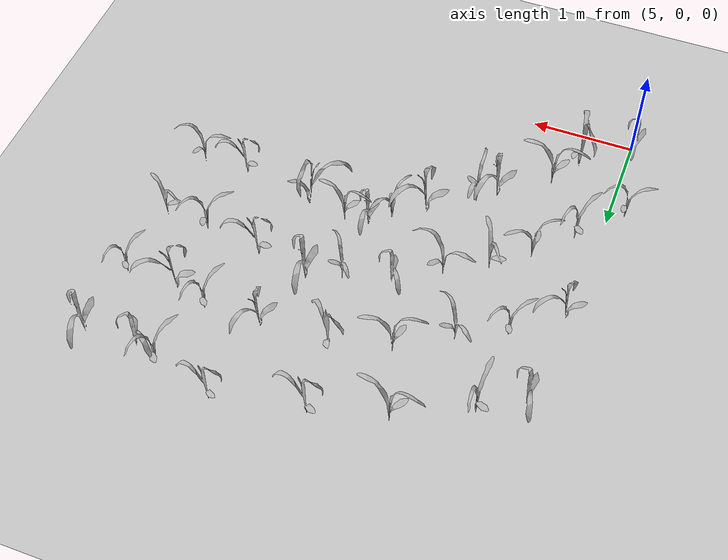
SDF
<sdf version="1.6">
 <world name="default">
  <model name="ground_plane">
   <static>1</static>
   <link name="link">
    <collision name="collision">
     <geometry><plane><normal>0 0 1</normal><size>100 100</size></plane></geometry>
     <surface>
      <contact><collide_bitmask>65535</collide_bitmask></contact>
      <friction><ode><mu>100</mu><mu2>50</mu2></ode></friction>
     </surface>
    </collision>
    <visual name="visual">
     <cast_shadows>0</cast_shadows>
     <geometry><plane><normal>0 0 1</normal><size>100 100</size></plane></geometry>
     <material>
      <script><uri>file://media/materials/scripts/gazebo.material</uri><name>Gazebo/Grey</name></script>
     </material>
    </visual>
   </link>
  </model>
  <model name="maize_01_0035">
   <pose>4.97444595073593 0.08621169543100017 0.05 0 -0 2.427624297971031</pose>
   <link name="maize_01_0035_link">
    <inertial>
     <mass>5.0</mass>
     <inertia>
      <ixx>0.0033416667</ixx>
      <ixy>0</ixy>
      <ixz>0</ixz>
      <iyy>0.0033416667</iyy>
      <iyz>0</iyz>
      <izz>0.000016666667</izz>
     </inertia>
     <pose>0 0 0.1 0 0 0</pose>
    </inertial>
    <collision name="collision">
     <pose>0 0 0.2 0 -0 0</pose>
     <geometry><box><size>0.02 0.02 0.4</size></box></geometry>
     <surface><friction><ode><mu>10</mu><mu2>10</mu2></ode></friction></surface>
    </collision>
    <visual name="visual">
     <geometry>
      <mesh>
       <uri>model://maize_01/meshes/maize_01.dae</uri>
       <scale>0.5274171438781382 0.5274171438781382 0.5274171438781382</scale>
      </mesh>
     </geometry>
    </visual>
   </link>
  </model>
  <model name="maize_02_0038">
   <pose>4.852091353903067 0.9129262782107443 0.05 0 -0 5.841322465150169</pose>
   <link name="maize_02_0038_link">
    <inertial>
     <mass>5.0</mass>
     <inertia>
      <ixx>0.0033416667</ixx>
      <ixy>0</ixy>
      <ixz>0</ixz>
      <iyy>0.0033416667</iyy>
      <iyz>0</iyz>
      <izz>0.000016666667</izz>
     </inertia>
     <pose>0 0 0.1 0 0 0</pose>
    </inertial>
    <collision name="collision">
     <pose>0 0 0.2 0 -0 0</pose>
     <geometry><box><size>0.02 0.02 0.4</size></box></geometry>
     <surface><friction><ode><mu>10</mu><mu2>10</mu2></ode></friction></surface>
    </collision>
    <visual name="visual">
     <geometry>
      <mesh>
       <uri>model://maize_02/meshes/maize_02.dae</uri>
       <scale>0.5319734408075188 0.5319734408075188 0.5319734408075188</scale>
      </mesh>
     </geometry>
    </visual>
   </link>
  </model>
  <model name="maize_01_0039">
   <pose>5.4266685938613435 0.43335299133955385 0.05 0 -0 5.6987765901204765</pose>
   <link name="maize_01_0039_link">
    <inertial>
     <mass>5.0</mass>
     <inertia>
      <ixx>0.0033416667</ixx>
      <ixy>0</ixy>
      <ixz>0</ixz>
      <iyy>0.0033416667</iyy>
      <iyz>0</iyz>
      <izz>0.000016666667</izz>
     </inertia>
     <pose>0 0 0.1 0 0 0</pose>
    </inertial>
    <collision name="collision">
     <pose>0 0 0.2 0 -0 0</pose>
     <geometry><box><size>0.02 0.02 0.4</size></box></geometry>
     <surface><friction><ode><mu>10</mu><mu2>10</mu2></ode></friction></surface>
    </collision>
    <visual name="visual">
     <geometry>
      <mesh>
       <uri>model://maize_01/meshes/maize_01.dae</uri>
       <scale>0.6562229309477603 0.6562229309477603 0.6562229309477603</scale>
      </mesh>
     </geometry>
    </visual>
   </link>
  </model>
  <model name="maize_02_0042">
   <pose>5.228473565053264 1.3279531962481805 0.05 0 -0 0.15605644897329987</pose>
   <link name="maize_02_0042_link">
    <inertial>
     <mass>5.0</mass>
     <inertia>
      <ixx>0.0033416667</ixx>
      <ixy>0</ixy>
      <ixz>0</ixz>
      <iyy>0.0033416667</iyy>
      <iyz>0</iyz>
      <izz>0.000016666667</izz>
     </inertia>
     <pose>0 0 0.1 0 0 0</pose>
    </inertial>
    <collision name="collision">
     <pose>0 0 0.2 0 -0 0</pose>
     <geometry><box><size>0.02 0.02 0.4</size></box></geometry>
     <surface><friction><ode><mu>10</mu><mu2>10</mu2></ode></friction></surface>
    </collision>
    <visual name="visual">
     <geometry>
      <mesh>
       <uri>model://maize_02/meshes/maize_02.dae</uri>
       <scale>0.606172681702437 0.606172681702437 0.606172681702437</scale>
      </mesh>
     </geometry>
    </visual>
   </link>
  </model>
  <model name="maize_02_0043">
   <pose>5.61811446142336 0.7618114145474567 0.05 0 -0 2.0131910083684352</pose>
   <link name="maize_02_0043_link">
    <inertial>
     <mass>5.0</mass>
     <inertia>
      <ixx>0.0033416667</ixx>
      <ixy>0</ixy>
      <ixz>0</ixz>
      <iyy>0.0033416667</iyy>
      <iyz>0</iyz>
      <izz>0.000016666667</izz>
     </inertia>
     <pose>0 0 0.1 0 0 0</pose>
    </inertial>
    <collision name="collision">
     <pose>0 0 0.2 0 -0 0</pose>
     <geometry><box><size>0.02 0.02 0.4</size></box></geometry>
     <surface><friction><ode><mu>10</mu><mu2>10</mu2></ode></friction></surface>
    </collision>
    <visual name="visual">
     <geometry>
      <mesh>
       <uri>model://maize_02/meshes/maize_02.dae</uri>
       <scale>0.6522062850050472 0.6522062850050472 0.6522062850050472</scale>
      </mesh>
     </geometry>
    </visual>
   </link>
  </model>
  <model name="maize_01_0044">
   <pose>5.059350256459496 2.2413220388103126 0.05 0 -0 1.501315639922494</pose>
   <link name="maize_01_0044_link">
    <inertial>
     <mass>5.0</mass>
     <inertia>
      <ixx>0.0033416667</ixx>
      <ixy>0</ixy>
      <ixz>0</ixz>
      <iyy>0.0033416667</iyy>
      <iyz>0</iyz>
      <izz>0.000016666667</izz>
     </inertia>
     <pose>0 0 0.1 0 0 0</pose>
    </inertial>
    <collision name="collision">
     <pose>0 0 0.2 0 -0 0</pose>
     <geometry><box><size>0.02 0.02 0.4</size></box></geometry>
     <surface><friction><ode><mu>10</mu><mu2>10</mu2></ode></friction></surface>
    </collision>
    <visual name="visual">
     <geometry>
      <mesh>
       <uri>model://maize_01/meshes/maize_01.dae</uri>
       <scale>0.5656031749005166 0.5656031749005166 0.5656031749005166</scale>
      </mesh>
     </geometry>
    </visual>
   </link>
  </model>
  <model name="maize_02_0046">
   <pose>5.545135330078479 1.683932687683838 0.05 0 -0 2.7002874187517696</pose>
   <link name="maize_02_0046_link">
    <inertial>
     <mass>5.0</mass>
     <inertia>
      <ixx>0.0033416667</ixx>
      <ixy>0</ixy>
      <ixz>0</ixz>
      <iyy>0.0033416667</iyy>
      <iyz>0</iyz>
      <izz>0.000016666667</izz>
     </inertia>
     <pose>0 0 0.1 0 0 0</pose>
    </inertial>
    <collision name="collision">
     <pose>0 0 0.2 0 -0 0</pose>
     <geometry><box><size>0.02 0.02 0.4</size></box></geometry>
     <surface><friction><ode><mu>10</mu><mu2>10</mu2></ode></friction></surface>
    </collision>
    <visual name="visual">
     <geometry>
      <mesh>
       <uri>model://maize_02/meshes/maize_02.dae</uri>
       <scale>0.5547920870230515 0.5547920870230515 0.5547920870230515</scale>
      </mesh>
     </geometry>
    </visual>
   </link>
  </model>
  <model name="maize_01_0047">
   <pose>6.067017970523803 1.0879434061076974 0.05 0 -0 2.0111031066399034</pose>
   <link name="maize_01_0047_link">
    <inertial>
     <mass>5.0</mass>
     <inertia>
      <ixx>0.0033416667</ixx>
      <ixy>0</ixy>
      <ixz>0</ixz>
      <iyy>0.0033416667</iyy>
      <iyz>0</iyz>
      <izz>0.000016666667</izz>
     </inertia>
     <pose>0 0 0.1 0 0 0</pose>
    </inertial>
    <collision name="collision">
     <pose>0 0 0.2 0 -0 0</pose>
     <geometry><box><size>0.02 0.02 0.4</size></box></geometry>
     <surface><friction><ode><mu>10</mu><mu2>10</mu2></ode></friction></surface>
    </collision>
    <visual name="visual">
     <geometry>
      <mesh>
       <uri>model://maize_01/meshes/maize_01.dae</uri>
       <scale>0.631238426143059 0.631238426143059 0.631238426143059</scale>
      </mesh>
     </geometry>
    </visual>
   </link>
  </model>
  <model name="maize_02_0048">
   <pose>5.485702398067829 2.6015920264345453 0.05 0 -0 6.196117535128421</pose>
   <link name="maize_02_0048_link">
    <inertial>
     <mass>5.0</mass>
     <inertia>
      <ixx>0.0033416667</ixx>
      <ixy>0</ixy>
      <ixz>0</ixz>
      <iyy>0.0033416667</iyy>
      <iyz>0</iyz>
      <izz>0.000016666667</izz>
     </inertia>
     <pose>0 0 0.1 0 0 0</pose>
    </inertial>
    <collision name="collision">
     <pose>0 0 0.2 0 -0 0</pose>
     <geometry><box><size>0.02 0.02 0.4</size></box></geometry>
     <surface><friction><ode><mu>10</mu><mu2>10</mu2></ode></friction></surface>
    </collision>
    <visual name="visual">
     <geometry>
      <mesh>
       <uri>model://maize_02/meshes/maize_02.dae</uri>
       <scale>0.5387643223977056 0.5387643223977056 0.5387643223977056</scale>
      </mesh>
     </geometry>
    </visual>
   </link>
  </model>
  <model name="maize_01_0049">
   <pose>5.131719209210227 3.222042796610569 0.05 0 -0 2.6271676853061567</pose>
   <link name="maize_01_0049_link">
    <inertial>
     <mass>5.0</mass>
     <inertia>
      <ixx>0.0033416667</ixx>
      <ixy>0</ixy>
      <ixz>0</ixz>
      <iyy>0.0033416667</iyy>
      <iyz>0</iyz>
      <izz>0.000016666667</izz>
     </inertia>
     <pose>0 0 0.1 0 0 0</pose>
    </inertial>
    <collision name="collision">
     <pose>0 0 0.2 0 -0 0</pose>
     <geometry><box><size>0.02 0.02 0.4</size></box></geometry>
     <surface><friction><ode><mu>10</mu><mu2>10</mu2></ode></friction></surface>
    </collision>
    <visual name="visual">
     <geometry>
      <mesh>
       <uri>model://maize_01/meshes/maize_01.dae</uri>
       <scale>0.5669864393895175 0.5669864393895175 0.5669864393895175</scale>
      </mesh>
     </geometry>
    </visual>
   </link>
  </model>
  <model name="maize_02_0050">
   <pose>5.866793018277562 1.9719409458748605 0.05 0 -0 1.086043667735169</pose>
   <link name="maize_02_0050_link">
    <inertial>
     <mass>5.0</mass>
     <inertia>
      <ixx>0.0033416667</ixx>
      <ixy>0</ixy>
      <ixz>0</ixz>
      <iyy>0.0033416667</iyy>
      <iyz>0</iyz>
      <izz>0.000016666667</izz>
     </inertia>
     <pose>0 0 0.1 0 0 0</pose>
    </inertial>
    <collision name="collision">
     <pose>0 0 0.2 0 -0 0</pose>
     <geometry><box><size>0.02 0.02 0.4</size></box></geometry>
     <surface><friction><ode><mu>10</mu><mu2>10</mu2></ode></friction></surface>
    </collision>
    <visual name="visual">
     <geometry>
      <mesh>
       <uri>model://maize_02/meshes/maize_02.dae</uri>
       <scale>0.5988511224476204 0.5988511224476204 0.5988511224476204</scale>
      </mesh>
     </geometry>
    </visual>
   </link>
  </model>
  <model name="maize_02_0051">
   <pose>6.228900534053314 1.2453344410985538 0.05 0 -0 3.744000959173067</pose>
   <link name="maize_02_0051_link">
    <inertial>
     <mass>5.0</mass>
     <inertia>
      <ixx>0.0033416667</ixx>
      <ixy>0</ixy>
      <ixz>0</ixz>
      <iyy>0.0033416667</iyy>
      <iyz>0</iyz>
      <izz>0.000016666667</izz>
     </inertia>
     <pose>0 0 0.1 0 0 0</pose>
    </inertial>
    <collision name="collision">
     <pose>0 0 0.2 0 -0 0</pose>
     <geometry><box><size>0.02 0.02 0.4</size></box></geometry>
     <surface><friction><ode><mu>10</mu><mu2>10</mu2></ode></friction></surface>
    </collision>
    <visual name="visual">
     <geometry>
      <mesh>
       <uri>model://maize_02/meshes/maize_02.dae</uri>
       <scale>0.58333928505133 0.58333928505133 0.58333928505133</scale>
      </mesh>
     </geometry>
    </visual>
   </link>
  </model>
  <model name="maize_02_0052">
   <pose>5.912029777595031 2.84165702037402 0.05 0 -0 4.547535072387455</pose>
   <link name="maize_02_0052_link">
    <inertial>
     <mass>5.0</mass>
     <inertia>
      <ixx>0.0033416667</ixx>
      <ixy>0</ixy>
      <ixz>0</ixz>
      <iyy>0.0033416667</iyy>
      <iyz>0</iyz>
      <izz>0.000016666667</izz>
     </inertia>
     <pose>0 0 0.1 0 0 0</pose>
    </inertial>
    <collision name="collision">
     <pose>0 0 0.2 0 -0 0</pose>
     <geometry><box><size>0.02 0.02 0.4</size></box></geometry>
     <surface><friction><ode><mu>10</mu><mu2>10</mu2></ode></friction></surface>
    </collision>
    <visual name="visual">
     <geometry>
      <mesh>
       <uri>model://maize_02/meshes/maize_02.dae</uri>
       <scale>0.5445625708520955 0.5445625708520955 0.5445625708520955</scale>
      </mesh>
     </geometry>
    </visual>
   </link>
  </model>
  <model name="maize_02_0053">
   <pose>5.50708366719429 3.4720703647930358 0.05 0 -0 0.5386488532530632</pose>
   <link name="maize_02_0053_link">
    <inertial>
     <mass>5.0</mass>
     <inertia>
      <ixx>0.0033416667</ixx>
      <ixy>0</ixy>
      <ixz>0</ixz>
      <iyy>0.0033416667</iyy>
      <iyz>0</iyz>
      <izz>0.000016666667</izz>
     </inertia>
     <pose>0 0 0.1 0 0 0</pose>
    </inertial>
    <collision name="collision">
     <pose>0 0 0.2 0 -0 0</pose>
     <geometry><box><size>0.02 0.02 0.4</size></box></geometry>
     <surface><friction><ode><mu>10</mu><mu2>10</mu2></ode></friction></surface>
    </collision>
    <visual name="visual">
     <geometry>
      <mesh>
       <uri>model://maize_02/meshes/maize_02.dae</uri>
       <scale>0.6283344582559183 0.6283344582559183 0.6283344582559183</scale>
      </mesh>
     </geometry>
    </visual>
   </link>
  </model>
  <model name="maize_02_0054">
   <pose>6.245173861658526 2.1921937988072697 0.05 0 -0 5.142134379937213</pose>
   <link name="maize_02_0054_link">
    <inertial>
     <mass>5.0</mass>
     <inertia>
      <ixx>0.0033416667</ixx>
      <ixy>0</ixy>
      <ixz>0</ixz>
      <iyy>0.0033416667</iyy>
      <iyz>0</iyz>
      <izz>0.000016666667</izz>
     </inertia>
     <pose>0 0 0.1 0 0 0</pose>
    </inertial>
    <collision name="collision">
     <pose>0 0 0.2 0 -0 0</pose>
     <geometry><box><size>0.02 0.02 0.4</size></box></geometry>
     <surface><friction><ode><mu>10</mu><mu2>10</mu2></ode></friction></surface>
    </collision>
    <visual name="visual">
     <geometry>
      <mesh>
       <uri>model://maize_02/meshes/maize_02.dae</uri>
       <scale>0.6213446753047682 0.6213446753047682 0.6213446753047682</scale>
      </mesh>
     </geometry>
    </visual>
   </link>
  </model>
  <model name="maize_01_0055">
   <pose>6.636470806480989 1.5198573351886528 0.05 0 -0 1.6437269788045112</pose>
   <link name="maize_01_0055_link">
    <inertial>
     <mass>5.0</mass>
     <inertia>
      <ixx>0.0033416667</ixx>
      <ixy>0</ixy>
      <ixz>0</ixz>
      <iyy>0.0033416667</iyy>
      <iyz>0</iyz>
      <izz>0.000016666667</izz>
     </inertia>
     <pose>0 0 0.1 0 0 0</pose>
    </inertial>
    <collision name="collision">
     <pose>0 0 0.2 0 -0 0</pose>
     <geometry><box><size>0.02 0.02 0.4</size></box></geometry>
     <surface><friction><ode><mu>10</mu><mu2>10</mu2></ode></friction></surface>
    </collision>
    <visual name="visual">
     <geometry>
      <mesh>
       <uri>model://maize_01/meshes/maize_01.dae</uri>
       <scale>0.6826364055513616 0.6826364055513616 0.6826364055513616</scale>
      </mesh>
     </geometry>
    </visual>
   </link>
  </model>
  <model name="maize_02_0056">
   <pose>6.391391297587896 3.13200796140828 0.05 0 -0 2.3103566168721494</pose>
   <link name="maize_02_0056_link">
    <inertial>
     <mass>5.0</mass>
     <inertia>
      <ixx>0.0033416667</ixx>
      <ixy>0</ixy>
      <ixz>0</ixz>
      <iyy>0.0033416667</iyy>
      <iyz>0</iyz>
      <izz>0.000016666667</izz>
     </inertia>
     <pose>0 0 0.1 0 0 0</pose>
    </inertial>
    <collision name="collision">
     <pose>0 0 0.2 0 -0 0</pose>
     <geometry><box><size>0.02 0.02 0.4</size></box></geometry>
     <surface><friction><ode><mu>10</mu><mu2>10</mu2></ode></friction></surface>
    </collision>
    <visual name="visual">
     <geometry>
      <mesh>
       <uri>model://maize_02/meshes/maize_02.dae</uri>
       <scale>0.6052102994979127 0.6052102994979127 0.6052102994979127</scale>
      </mesh>
     </geometry>
    </visual>
   </link>
  </model>
  <model name="maize_02_0057">
   <pose>6.168631820246687 3.8149061786681275 0.05 0 -0 1.9253578948192391</pose>
   <link name="maize_02_0057_link">
    <inertial>
     <mass>5.0</mass>
     <inertia>
      <ixx>0.0033416667</ixx>
      <ixy>0</ixy>
      <ixz>0</ixz>
      <iyy>0.0033416667</iyy>
      <iyz>0</iyz>
      <izz>0.000016666667</izz>
     </inertia>
     <pose>0 0 0.1 0 0 0</pose>
    </inertial>
    <collision name="collision">
     <pose>0 0 0.2 0 -0 0</pose>
     <geometry><box><size>0.02 0.02 0.4</size></box></geometry>
     <surface><friction><ode><mu>10</mu><mu2>10</mu2></ode></friction></surface>
    </collision>
    <visual name="visual">
     <geometry>
      <mesh>
       <uri>model://maize_02/meshes/maize_02.dae</uri>
       <scale>0.6498650940780096 0.6498650940780096 0.6498650940780096</scale>
      </mesh>
     </geometry>
    </visual>
   </link>
  </model>
  <model name="maize_01_0058">
   <pose>6.660142652239879 2.4302675573614354 0.05 0 -0 2.920757348895283</pose>
   <link name="maize_01_0058_link">
    <inertial>
     <mass>5.0</mass>
     <inertia>
      <ixx>0.0033416667</ixx>
      <ixy>0</ixy>
      <ixz>0</ixz>
      <iyy>0.0033416667</iyy>
      <iyz>0</iyz>
      <izz>0.000016666667</izz>
     </inertia>
     <pose>0 0 0.1 0 0 0</pose>
    </inertial>
    <collision name="collision">
     <pose>0 0 0.2 0 -0 0</pose>
     <geometry><box><size>0.02 0.02 0.4</size></box></geometry>
     <surface><friction><ode><mu>10</mu><mu2>10</mu2></ode></friction></surface>
    </collision>
    <visual name="visual">
     <geometry>
      <mesh>
       <uri>model://maize_01/meshes/maize_01.dae</uri>
       <scale>0.5146158764332626 0.5146158764332626 0.5146158764332626</scale>
      </mesh>
     </geometry>
    </visual>
   </link>
  </model>
  <model name="maize_02_0059">
   <pose>6.916616427568405 1.7158569972503417 0.05 0 -0 3.2414869347451427</pose>
   <link name="maize_02_0059_link">
    <inertial>
     <mass>5.0</mass>
     <inertia>
      <ixx>0.0033416667</ixx>
      <ixy>0</ixy>
      <ixz>0</ixz>
      <iyy>0.0033416667</iyy>
      <iyz>0</iyz>
      <izz>0.000016666667</izz>
     </inertia>
     <pose>0 0 0.1 0 0 0</pose>
    </inertial>
    <collision name="collision">
     <pose>0 0 0.2 0 -0 0</pose>
     <geometry><box><size>0.02 0.02 0.4</size></box></geometry>
     <surface><friction><ode><mu>10</mu><mu2>10</mu2></ode></friction></surface>
    </collision>
    <visual name="visual">
     <geometry>
      <mesh>
       <uri>model://maize_02/meshes/maize_02.dae</uri>
       <scale>0.5142641334484015 0.5142641334484015 0.5142641334484015</scale>
      </mesh>
     </geometry>
    </visual>
   </link>
  </model>
  <model name="maize_01_0060">
   <pose>6.928295911207458 3.3011538140525145 0.05 0 -0 6.281618568026531</pose>
   <link name="maize_01_0060_link">
    <inertial>
     <mass>5.0</mass>
     <inertia>
      <ixx>0.0033416667</ixx>
      <ixy>0</ixy>
      <ixz>0</ixz>
      <iyy>0.0033416667</iyy>
      <iyz>0</iyz>
      <izz>0.000016666667</izz>
     </inertia>
     <pose>0 0 0.1 0 0 0</pose>
    </inertial>
    <collision name="collision">
     <pose>0 0 0.2 0 -0 0</pose>
     <geometry><box><size>0.02 0.02 0.4</size></box></geometry>
     <surface><friction><ode><mu>10</mu><mu2>10</mu2></ode></friction></surface>
    </collision>
    <visual name="visual">
     <geometry>
      <mesh>
       <uri>model://maize_01/meshes/maize_01.dae</uri>
       <scale>0.5566442724547834 0.5566442724547834 0.5566442724547834</scale>
      </mesh>
     </geometry>
    </visual>
   </link>
  </model>
  <model name="maize_01_0061">
   <pose>6.855063461795243 3.988079696062108 0.05 0 -0 0.5177371875248721</pose>
   <link name="maize_01_0061_link">
    <inertial>
     <mass>5.0</mass>
     <inertia>
      <ixx>0.0033416667</ixx>
      <ixy>0</ixy>
      <ixz>0</ixz>
      <iyy>0.0033416667</iyy>
      <iyz>0</iyz>
      <izz>0.000016666667</izz>
     </inertia>
     <pose>0 0 0.1 0 0 0</pose>
    </inertial>
    <collision name="collision">
     <pose>0 0 0.2 0 -0 0</pose>
     <geometry><box><size>0.02 0.02 0.4</size></box></geometry>
     <surface><friction><ode><mu>10</mu><mu2>10</mu2></ode></friction></surface>
    </collision>
    <visual name="visual">
     <geometry>
      <mesh>
       <uri>model://maize_01/meshes/maize_01.dae</uri>
       <scale>0.5665197632213537 0.5665197632213537 0.5665197632213537</scale>
      </mesh>
     </geometry>
    </visual>
   </link>
  </model>
  <model name="maize_02_0062">
   <pose>7.0956985917517335 2.5509720487950744 0.05 0 -0 4.366610670065794</pose>
   <link name="maize_02_0062_link">
    <inertial>
     <mass>5.0</mass>
     <inertia>
      <ixx>0.0033416667</ixx>
      <ixy>0</ixy>
      <ixz>0</ixz>
      <iyy>0.0033416667</iyy>
      <iyz>0</iyz>
      <izz>0.000016666667</izz>
     </inertia>
     <pose>0 0 0.1 0 0 0</pose>
    </inertial>
    <collision name="collision">
     <pose>0 0 0.2 0 -0 0</pose>
     <geometry><box><size>0.02 0.02 0.4</size></box></geometry>
     <surface><friction><ode><mu>10</mu><mu2>10</mu2></ode></friction></surface>
    </collision>
    <visual name="visual">
     <geometry>
      <mesh>
       <uri>model://maize_02/meshes/maize_02.dae</uri>
       <scale>0.5182458810116037 0.5182458810116037 0.5182458810116037</scale>
      </mesh>
     </geometry>
    </visual>
   </link>
  </model>
  <model name="maize_01_0063">
   <pose>7.099189496678039 1.869060459358947 0.05 0 -0 2.4828272662231483</pose>
   <link name="maize_01_0063_link">
    <inertial>
     <mass>5.0</mass>
     <inertia>
      <ixx>0.0033416667</ixx>
      <ixy>0</ixy>
      <ixz>0</ixz>
      <iyy>0.0033416667</iyy>
      <iyz>0</iyz>
      <izz>0.000016666667</izz>
     </inertia>
     <pose>0 0 0.1 0 0 0</pose>
    </inertial>
    <collision name="collision">
     <pose>0 0 0.2 0 -0 0</pose>
     <geometry><box><size>0.02 0.02 0.4</size></box></geometry>
     <surface><friction><ode><mu>10</mu><mu2>10</mu2></ode></friction></surface>
    </collision>
    <visual name="visual">
     <geometry>
      <mesh>
       <uri>model://maize_01/meshes/maize_01.dae</uri>
       <scale>0.5403297240955635 0.5403297240955635 0.5403297240955635</scale>
      </mesh>
     </geometry>
    </visual>
   </link>
  </model>
  <model name="maize_01_0064">
   <pose>7.588604508695167 3.301672933850875 0.05 0 -0 1.9874976281355679</pose>
   <link name="maize_01_0064_link">
    <inertial>
     <mass>5.0</mass>
     <inertia>
      <ixx>0.0033416667</ixx>
      <ixy>0</ixy>
      <ixz>0</ixz>
      <iyy>0.0033416667</iyy>
      <iyz>0</iyz>
      <izz>0.000016666667</izz>
     </inertia>
     <pose>0 0 0.1 0 0 0</pose>
    </inertial>
    <collision name="collision">
     <pose>0 0 0.2 0 -0 0</pose>
     <geometry><box><size>0.02 0.02 0.4</size></box></geometry>
     <surface><friction><ode><mu>10</mu><mu2>10</mu2></ode></friction></surface>
    </collision>
    <visual name="visual">
     <geometry>
      <mesh>
       <uri>model://maize_01/meshes/maize_01.dae</uri>
       <scale>0.5856325528094056 0.5856325528094056 0.5856325528094056</scale>
      </mesh>
     </geometry>
    </visual>
   </link>
  </model>
  <model name="maize_01_0065">
   <pose>7.701072182493467 4.152983047686108 0.05 0 -0 0.5543328108551665</pose>
   <link name="maize_01_0065_link">
    <inertial>
     <mass>5.0</mass>
     <inertia>
      <ixx>0.0033416667</ixx>
      <ixy>0</ixy>
      <ixz>0</ixz>
      <iyy>0.0033416667</iyy>
      <iyz>0</iyz>
      <izz>0.000016666667</izz>
     </inertia>
     <pose>0 0 0.1 0 0 0</pose>
    </inertial>
    <collision name="collision">
     <pose>0 0 0.2 0 -0 0</pose>
     <geometry><box><size>0.02 0.02 0.4</size></box></geometry>
     <surface><friction><ode><mu>10</mu><mu2>10</mu2></ode></friction></surface>
    </collision>
    <visual name="visual">
     <geometry>
      <mesh>
       <uri>model://maize_01/meshes/maize_01.dae</uri>
       <scale>0.517855774139594 0.517855774139594 0.517855774139594</scale>
      </mesh>
     </geometry>
    </visual>
   </link>
  </model>
  <model name="maize_01_0066">
   <pose>7.4144990755761135 2.668246039365235 0.05 0 -0 2.5438375256530663</pose>
   <link name="maize_01_0066_link">
    <inertial>
     <mass>5.0</mass>
     <inertia>
      <ixx>0.0033416667</ixx>
      <ixy>0</ixy>
      <ixz>0</ixz>
      <iyy>0.0033416667</iyy>
      <iyz>0</iyz>
      <izz>0.000016666667</izz>
     </inertia>
     <pose>0 0 0.1 0 0 0</pose>
    </inertial>
    <collision name="collision">
     <pose>0 0 0.2 0 -0 0</pose>
     <geometry><box><size>0.02 0.02 0.4</size></box></geometry>
     <surface><friction><ode><mu>10</mu><mu2>10</mu2></ode></friction></surface>
    </collision>
    <visual name="visual">
     <geometry>
      <mesh>
       <uri>model://maize_01/meshes/maize_01.dae</uri>
       <scale>0.666561061533092 0.666561061533092 0.666561061533092</scale>
      </mesh>
     </geometry>
    </visual>
   </link>
  </model>
  <model name="maize_02_0067">
   <pose>7.32405486340041 1.9022057915184025 0.05 0 -0 1.9118691535703112</pose>
   <link name="maize_02_0067_link">
    <inertial>
     <mass>5.0</mass>
     <inertia>
      <ixx>0.0033416667</ixx>
      <ixy>0</ixy>
      <ixz>0</ixz>
      <iyy>0.0033416667</iyy>
      <iyz>0</iyz>
      <izz>0.000016666667</izz>
     </inertia>
     <pose>0 0 0.1 0 0 0</pose>
    </inertial>
    <collision name="collision">
     <pose>0 0 0.2 0 -0 0</pose>
     <geometry><box><size>0.02 0.02 0.4</size></box></geometry>
     <surface><friction><ode><mu>10</mu><mu2>10</mu2></ode></friction></surface>
    </collision>
    <visual name="visual">
     <geometry>
      <mesh>
       <uri>model://maize_02/meshes/maize_02.dae</uri>
       <scale>0.5714654185228264 0.5714654185228264 0.5714654185228264</scale>
      </mesh>
     </geometry>
    </visual>
   </link>
  </model>
  <model name="maize_02_0068">
   <pose>8.132832545576337 3.3025187289822577 0.05 0 -0 0.2544970227104394</pose>
   <link name="maize_02_0068_link">
    <inertial>
     <mass>5.0</mass>
     <inertia>
      <ixx>0.0033416667</ixx>
      <ixy>0</ixy>
      <ixz>0</ixz>
      <iyy>0.0033416667</iyy>
      <iyz>0</iyz>
      <izz>0.000016666667</izz>
     </inertia>
     <pose>0 0 0.1 0 0 0</pose>
    </inertial>
    <collision name="collision">
     <pose>0 0 0.2 0 -0 0</pose>
     <geometry><box><size>0.02 0.02 0.4</size></box></geometry>
     <surface><friction><ode><mu>10</mu><mu2>10</mu2></ode></friction></surface>
    </collision>
    <visual name="visual">
     <geometry>
      <mesh>
       <uri>model://maize_02/meshes/maize_02.dae</uri>
       <scale>0.5608938856255327 0.5608938856255327 0.5608938856255327</scale>
      </mesh>
     </geometry>
    </visual>
   </link>
  </model>
  <model name="maize_02_0069">
   <pose>8.280174961960128 3.9955803976367426 0.05 0 -0 0.22906440394780067</pose>
   <link name="maize_02_0069_link">
    <inertial>
     <mass>5.0</mass>
     <inertia>
      <ixx>0.0033416667</ixx>
      <ixy>0</ixy>
      <ixz>0</ixz>
      <iyy>0.0033416667</iyy>
      <iyz>0</iyz>
      <izz>0.000016666667</izz>
     </inertia>
     <pose>0 0 0.1 0 0 0</pose>
    </inertial>
    <collision name="collision">
     <pose>0 0 0.2 0 -0 0</pose>
     <geometry><box><size>0.02 0.02 0.4</size></box></geometry>
     <surface><friction><ode><mu>10</mu><mu2>10</mu2></ode></friction></surface>
    </collision>
    <visual name="visual">
     <geometry>
      <mesh>
       <uri>model://maize_02/meshes/maize_02.dae</uri>
       <scale>0.6094734029504809 0.6094734029504809 0.6094734029504809</scale>
      </mesh>
     </geometry>
    </visual>
   </link>
  </model>
  <model name="maize_01_0070">
   <pose>7.92594204888926 2.561215286173783 0.05 0 -0 0.879567196509141</pose>
   <link name="maize_01_0070_link">
    <inertial>
     <mass>5.0</mass>
     <inertia>
      <ixx>0.0033416667</ixx>
      <ixy>0</ixy>
      <ixz>0</ixz>
      <iyy>0.0033416667</iyy>
      <iyz>0</iyz>
      <izz>0.000016666667</izz>
     </inertia>
     <pose>0 0 0.1 0 0 0</pose>
    </inertial>
    <collision name="collision">
     <pose>0 0 0.2 0 -0 0</pose>
     <geometry><box><size>0.02 0.02 0.4</size></box></geometry>
     <surface><friction><ode><mu>10</mu><mu2>10</mu2></ode></friction></surface>
    </collision>
    <visual name="visual">
     <geometry>
      <mesh>
       <uri>model://maize_01/meshes/maize_01.dae</uri>
       <scale>0.5834992849579165 0.5834992849579165 0.5834992849579165</scale>
      </mesh>
     </geometry>
    </visual>
   </link>
  </model>
  <model name="maize_01_0071">
   <pose>7.711873025939446 1.8279855316769662 0.05 0 -0 4.596976118755807</pose>
   <link name="maize_01_0071_link">
    <inertial>
     <mass>5.0</mass>
     <inertia>
      <ixx>0.0033416667</ixx>
      <ixy>0</ixy>
      <ixz>0</ixz>
      <iyy>0.0033416667</iyy>
      <iyz>0</iyz>
      <izz>0.000016666667</izz>
     </inertia>
     <pose>0 0 0.1 0 0 0</pose>
    </inertial>
    <collision name="collision">
     <pose>0 0 0.2 0 -0 0</pose>
     <geometry><box><size>0.02 0.02 0.4</size></box></geometry>
     <surface><friction><ode><mu>10</mu><mu2>10</mu2></ode></friction></surface>
    </collision>
    <visual name="visual">
     <geometry>
      <mesh>
       <uri>model://maize_01/meshes/maize_01.dae</uri>
       <scale>0.6979434156225328 0.6979434156225328 0.6979434156225328</scale>
      </mesh>
     </geometry>
    </visual>
   </link>
  </model>
  <model name="maize_01_0072">
   <pose>8.467050603581194 3.1833805252905525 0.05 0 -0 1.367504864179338</pose>
   <link name="maize_01_0072_link">
    <inertial>
     <mass>5.0</mass>
     <inertia>
      <ixx>0.0033416667</ixx>
      <ixy>0</ixy>
      <ixz>0</ixz>
      <iyy>0.0033416667</iyy>
      <iyz>0</iyz>
      <izz>0.000016666667</izz>
     </inertia>
     <pose>0 0 0.1 0 0 0</pose>
    </inertial>
    <collision name="collision">
     <pose>0 0 0.2 0 -0 0</pose>
     <geometry><box><size>0.02 0.02 0.4</size></box></geometry>
     <surface><friction><ode><mu>10</mu><mu2>10</mu2></ode></friction></surface>
    </collision>
    <visual name="visual">
     <geometry>
      <mesh>
       <uri>model://maize_01/meshes/maize_01.dae</uri>
       <scale>0.6596030141475929 0.6596030141475929 0.6596030141475929</scale>
      </mesh>
     </geometry>
    </visual>
   </link>
  </model>
  <model name="maize_01_0073">
   <pose>8.526374812514655 3.8886849930356298 0.05 0 -0 3.2932703239037484</pose>
   <link name="maize_01_0073_link">
    <inertial>
     <mass>5.0</mass>
     <inertia>
      <ixx>0.0033416667</ixx>
      <ixy>0</ixy>
      <ixz>0</ixz>
      <iyy>0.0033416667</iyy>
      <iyz>0</iyz>
      <izz>0.000016666667</izz>
     </inertia>
     <pose>0 0 0.1 0 0 0</pose>
    </inertial>
    <collision name="collision">
     <pose>0 0 0.2 0 -0 0</pose>
     <geometry><box><size>0.02 0.02 0.4</size></box></geometry>
     <surface><friction><ode><mu>10</mu><mu2>10</mu2></ode></friction></surface>
    </collision>
    <visual name="visual">
     <geometry>
      <mesh>
       <uri>model://maize_01/meshes/maize_01.dae</uri>
       <scale>0.5491882526039004 0.5491882526039004 0.5491882526039004</scale>
      </mesh>
     </geometry>
    </visual>
   </link>
  </model>
  <model name="maize_02_0074">
   <pose>8.493244779527148 2.4628941336821892 0.05 0 -0 6.148994550812682</pose>
   <link name="maize_02_0074_link">
    <inertial>
     <mass>5.0</mass>
     <inertia>
      <ixx>0.0033416667</ixx>
      <ixy>0</ixy>
      <ixz>0</ixz>
      <iyy>0.0033416667</iyy>
      <iyz>0</iyz>
      <izz>0.000016666667</izz>
     </inertia>
     <pose>0 0 0.1 0 0 0</pose>
    </inertial>
    <collision name="collision">
     <pose>0 0 0.2 0 -0 0</pose>
     <geometry><box><size>0.02 0.02 0.4</size></box></geometry>
     <surface><friction><ode><mu>10</mu><mu2>10</mu2></ode></friction></surface>
    </collision>
    <visual name="visual">
     <geometry>
      <mesh>
       <uri>model://maize_02/meshes/maize_02.dae</uri>
       <scale>0.5764712459583139 0.5764712459583139 0.5764712459583139</scale>
      </mesh>
     </geometry>
    </visual>
   </link>
  </model>
  <model name="maize_01_0075">
   <pose>8.432040941843137 1.6743129653347246 0.05 0 -0 0.8027968560173925</pose>
   <link name="maize_01_0075_link">
    <inertial>
     <mass>5.0</mass>
     <inertia>
      <ixx>0.0033416667</ixx>
      <ixy>0</ixy>
      <ixz>0</ixz>
      <iyy>0.0033416667</iyy>
      <iyz>0</iyz>
      <izz>0.000016666667</izz>
     </inertia>
     <pose>0 0 0.1 0 0 0</pose>
    </inertial>
    <collision name="collision">
     <pose>0 0 0.2 0 -0 0</pose>
     <geometry><box><size>0.02 0.02 0.4</size></box></geometry>
     <surface><friction><ode><mu>10</mu><mu2>10</mu2></ode></friction></surface>
    </collision>
    <visual name="visual">
     <geometry>
      <mesh>
       <uri>model://maize_01/meshes/maize_01.dae</uri>
       <scale>0.5252043417143641 0.5252043417143641 0.5252043417143641</scale>
      </mesh>
     </geometry>
    </visual>
   </link>
  </model>
  <model name="maize_02_0076">
   <pose>8.970985376496829 3.177990930168938 0.05 0 -0 0.2565945470689276</pose>
   <link name="maize_02_0076_link">
    <inertial>
     <mass>5.0</mass>
     <inertia>
      <ixx>0.0033416667</ixx>
      <ixy>0</ixy>
      <ixz>0</ixz>
      <iyy>0.0033416667</iyy>
      <iyz>0</iyz>
      <izz>0.000016666667</izz>
     </inertia>
     <pose>0 0 0.1 0 0 0</pose>
    </inertial>
    <collision name="collision">
     <pose>0 0 0.2 0 -0 0</pose>
     <geometry><box><size>0.02 0.02 0.4</size></box></geometry>
     <surface><friction><ode><mu>10</mu><mu2>10</mu2></ode></friction></surface>
    </collision>
    <visual name="visual">
     <geometry>
      <mesh>
       <uri>model://maize_02/meshes/maize_02.dae</uri>
       <scale>0.5255556072933829 0.5255556072933829 0.5255556072933829</scale>
      </mesh>
     </geometry>
    </visual>
   </link>
  </model>
  <model name="maize_01_0077">
   <pose>9.029399319716791 3.9052674930975937 0.05 0 -0 2.6587178884153233</pose>
   <link name="maize_01_0077_link">
    <inertial>
     <mass>5.0</mass>
     <inertia>
      <ixx>0.0033416667</ixx>
      <ixy>0</ixy>
      <ixz>0</ixz>
      <iyy>0.0033416667</iyy>
      <iyz>0</iyz>
      <izz>0.000016666667</izz>
     </inertia>
     <pose>0 0 0.1 0 0 0</pose>
    </inertial>
    <collision name="collision">
     <pose>0 0 0.2 0 -0 0</pose>
     <geometry><box><size>0.02 0.02 0.4</size></box></geometry>
     <surface><friction><ode><mu>10</mu><mu2>10</mu2></ode></friction></surface>
    </collision>
    <visual name="visual">
     <geometry>
      <mesh>
       <uri>model://maize_01/meshes/maize_01.dae</uri>
       <scale>0.6366186926719548 0.6366186926719548 0.6366186926719548</scale>
      </mesh>
     </geometry>
    </visual>
   </link>
  </model>
  <model name="maize_02_0078">
   <pose>8.91661448199344 2.441386130835144 0.05 0 -0 1.5722819801844137</pose>
   <link name="maize_02_0078_link">
    <inertial>
     <mass>5.0</mass>
     <inertia>
      <ixx>0.0033416667</ixx>
      <ixy>0</ixy>
      <ixz>0</ixz>
      <iyy>0.0033416667</iyy>
      <iyz>0</iyz>
      <izz>0.000016666667</izz>
     </inertia>
     <pose>0 0 0.1 0 0 0</pose>
    </inertial>
    <collision name="collision">
     <pose>0 0 0.2 0 -0 0</pose>
     <geometry><box><size>0.02 0.02 0.4</size></box></geometry>
     <surface><friction><ode><mu>10</mu><mu2>10</mu2></ode></friction></surface>
    </collision>
    <visual name="visual">
     <geometry>
      <mesh>
       <uri>model://maize_02/meshes/maize_02.dae</uri>
       <scale>0.5206749996114169 0.5206749996114169 0.5206749996114169</scale>
      </mesh>
     </geometry>
    </visual>
   </link>
  </model>
  <model name="maize_02_0079">
   <pose>8.878965463084363 1.6802198809658904 0.05 0 -0 5.52333272127235</pose>
   <link name="maize_02_0079_link">
    <inertial>
     <mass>5.0</mass>
     <inertia>
      <ixx>0.0033416667</ixx>
      <ixy>0</ixy>
      <ixz>0</ixz>
      <iyy>0.0033416667</iyy>
      <iyz>0</iyz>
      <izz>0.000016666667</izz>
     </inertia>
     <pose>0 0 0.1 0 0 0</pose>
    </inertial>
    <collision name="collision">
     <pose>0 0 0.2 0 -0 0</pose>
     <geometry><box><size>0.02 0.02 0.4</size></box></geometry>
     <surface><friction><ode><mu>10</mu><mu2>10</mu2></ode></friction></surface>
    </collision>
    <visual name="visual">
     <geometry>
      <mesh>
       <uri>model://maize_02/meshes/maize_02.dae</uri>
       <scale>0.5407242707221832 0.5407242707221832 0.5407242707221832</scale>
      </mesh>
     </geometry>
    </visual>
   </link>
  </model>
 </world>
</sdf>
